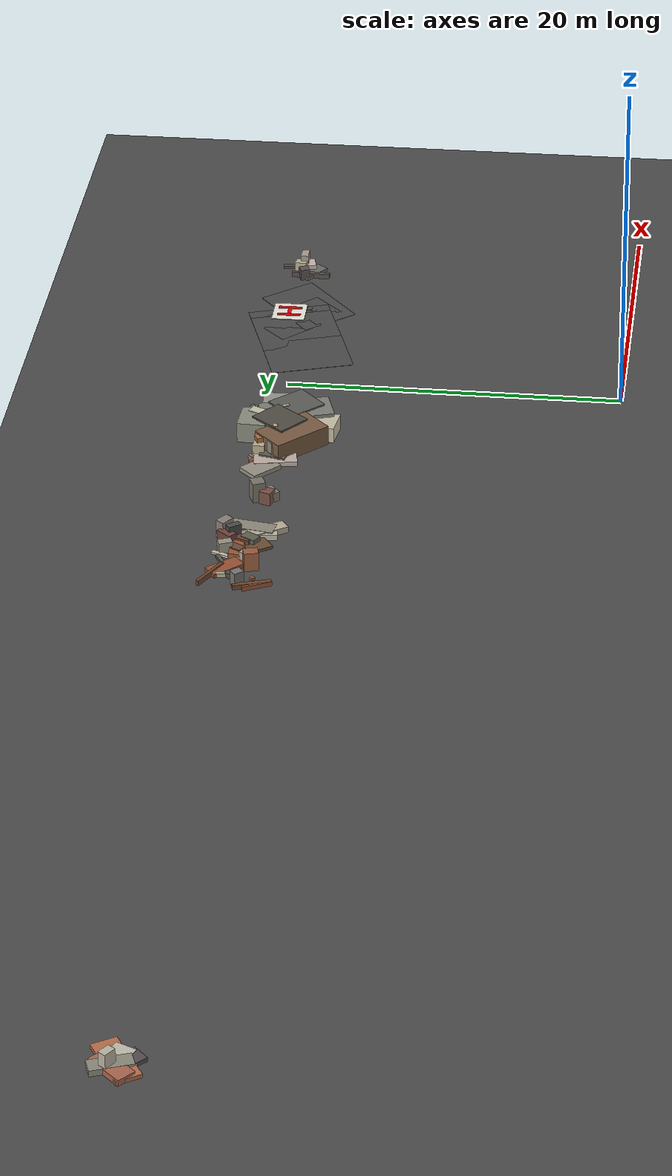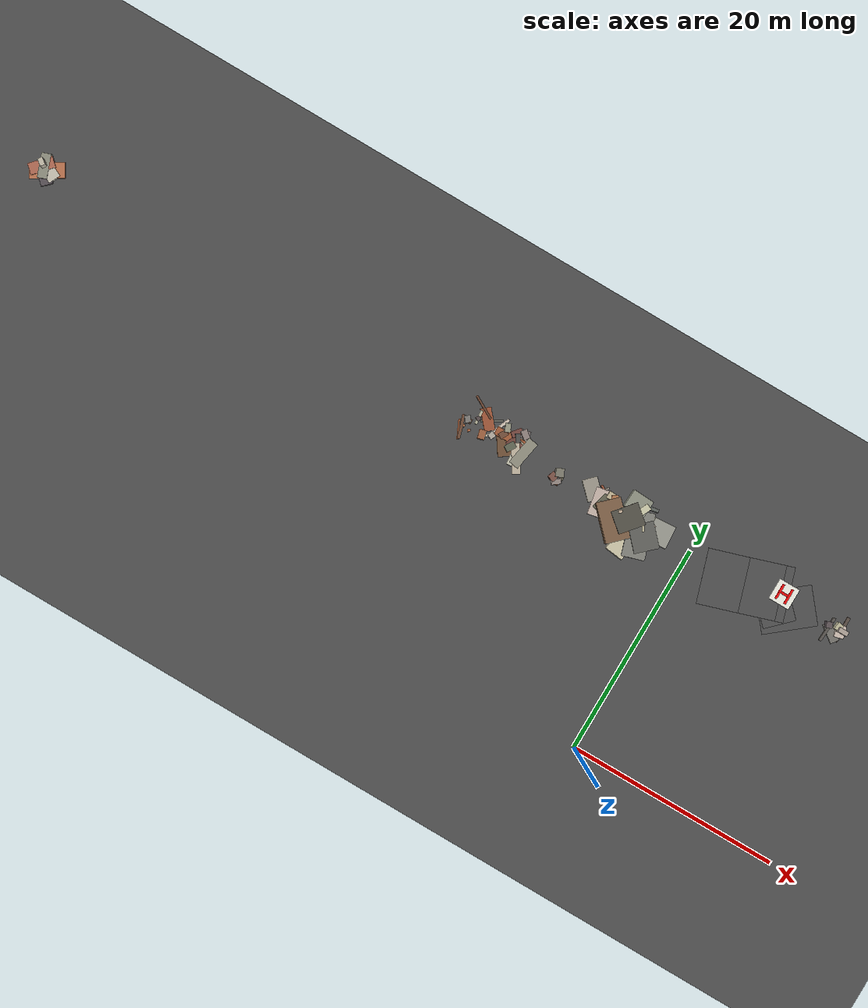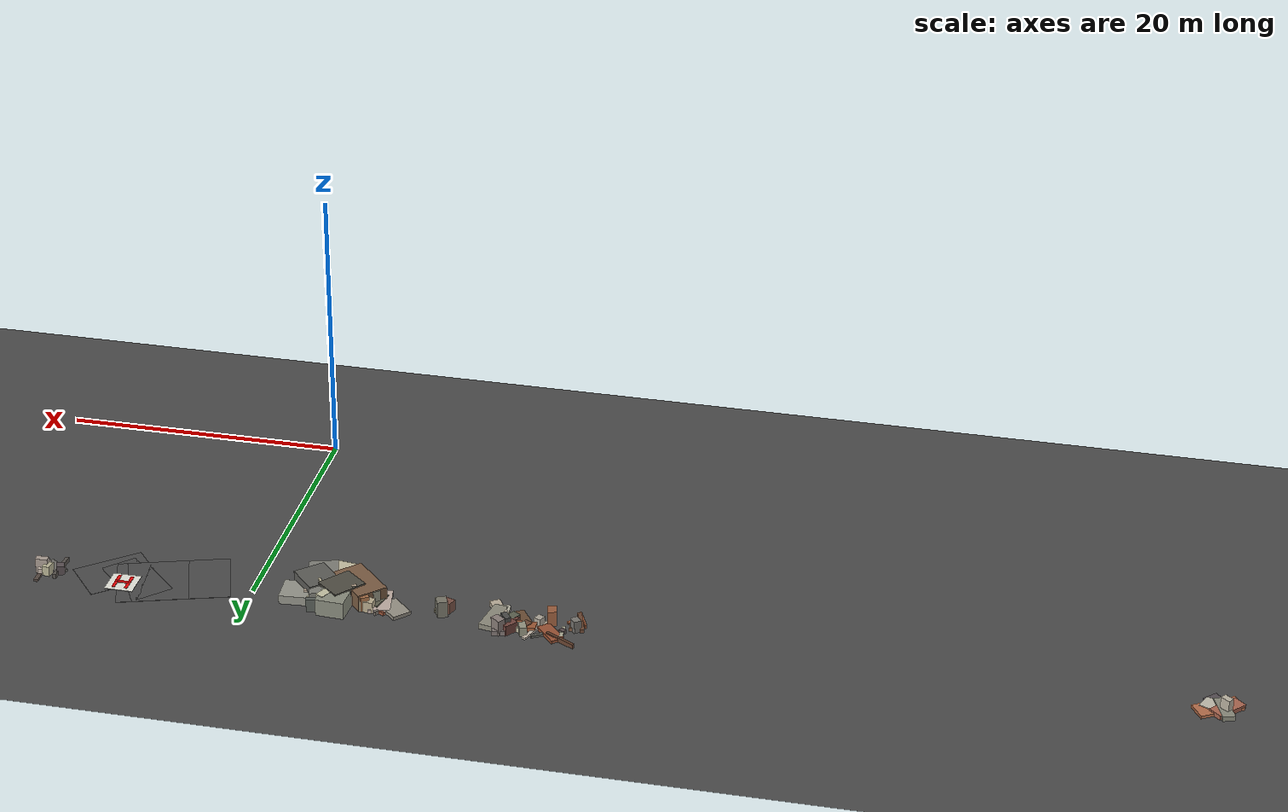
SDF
<sdf version="1.6">
 <world name="navitas_arena">
  <model name="ground_plane">
   <static>true</static>
   <link name="link">
    <collision name="collision">
     <geometry><plane><normal>0 0 1</normal><size>400 400</size></plane></geometry>
     <surface><friction><ode><mu>0.800</mu><mu2>0.800</mu2></ode></friction></surface>
    </collision>
    <visual name="visual">
     <cast_shadows>false</cast_shadows>
     <geometry><plane><normal>0 0 1</normal><size>400 400</size></plane></geometry>
     <material>
      <specular>0.04 0.04 0.04 1</specular>
      <script>
       <uri>file://media/materials/scripts/navitas_asphalt.material</uri>
       <name>Navitas/RealArenaAsphalt</name>
      </script>
     </material>
    </visual>
   </link>
  </model>
  <model name="deb_kolay_40">
   <static>true</static>
   <pose>-66.063 20.154 0.000 0 0 0</pose>
   <link name="link">
    <collision name="col_0">
     <pose>0.030 0.033 0.173 0.000 0.000 1.924</pose>
     <geometry><box><size>2.234 0.868 0.347</size></box></geometry>
    </collision>
    <visual name="vis_0">
     <pose>0.030 0.033 0.173 0.000 0.000 1.924</pose>
     <geometry><box><size>2.234 0.868 0.347</size></box></geometry>
     <material>
      <ambient>0.51 0.51 0.45 1</ambient>
      <diffuse>0.55 0.55 0.49 1</diffuse>
      <specular>0.05 0.05 0.045 1</specular>
     </material>
    </visual>
    <collision name="col_1">
     <pose>0.323 -0.517 0.119 0.000 0.000 2.340</pose>
     <geometry><box><size>2.125 1.078 0.238</size></box></geometry>
    </collision>
    <visual name="vis_1">
     <pose>0.323 -0.517 0.119 0.000 0.000 2.340</pose>
     <geometry><box><size>2.125 1.078 0.238</size></box></geometry>
     <material>
      <ambient>0.31 0.29 0.31 1</ambient>
      <diffuse>0.34 0.31 0.33 1</diffuse>
      <specular>0.05 0.05 0.045 1</specular>
     </material>
    </visual>
    <collision name="col_2">
     <pose>-0.110 0.154 0.572 0.000 0.000 0.941</pose>
     <geometry><box><size>0.465 0.703 1.143</size></box></geometry>
    </collision>
    <visual name="vis_2">
     <pose>-0.110 0.154 0.572 0.000 0.000 0.941</pose>
     <geometry><box><size>0.465 0.703 1.143</size></box></geometry>
     <material>
      <ambient>0.69 0.67 0.60 1</ambient>
      <diffuse>0.75 0.72 0.65 1</diffuse>
      <specular>0.05 0.05 0.045 1</specular>
     </material>
    </visual>
    <collision name="col_3">
     <pose>0.533 -0.122 0.138 0.000 0.000 2.708</pose>
     <geometry><box><size>1.956 1.161 0.276</size></box></geometry>
    </collision>
    <visual name="vis_3">
     <pose>0.533 -0.122 0.138 0.000 0.000 2.708</pose>
     <geometry><box><size>1.956 1.161 0.276</size></box></geometry>
     <material>
      <ambient>0.71 0.69 0.63 1</ambient>
      <diffuse>0.77 0.75 0.69 1</diffuse>
      <specular>0.05 0.05 0.045 1</specular>
     </material>
    </visual>
    <collision name="col_4">
     <pose>0.050 -0.445 0.084 0.000 0.000 1.717</pose>
     <geometry><box><size>1.580 0.169 0.168</size></box></geometry>
    </collision>
    <visual name="vis_4">
     <pose>0.050 -0.445 0.084 0.000 0.000 1.717</pose>
     <geometry><box><size>1.580 0.169 0.168</size></box></geometry>
     <material>
      <ambient>0.49 0.51 0.47 1</ambient>
      <diffuse>0.53 0.55 0.51 1</diffuse>
      <specular>0.05 0.05 0.045 1</specular>
     </material>
    </visual>
    <collision name="col_5">
     <pose>0.430 -0.178 0.109 0.000 0.000 0.545</pose>
     <geometry><box><size>3.169 1.400 0.218</size></box></geometry>
    </collision>
    <visual name="vis_5">
     <pose>0.430 -0.178 0.109 0.000 0.000 0.545</pose>
     <geometry><box><size>3.169 1.400 0.218</size></box></geometry>
     <material>
      <ambient>0.67 0.40 0.28 1</ambient>
      <diffuse>0.72 0.44 0.30 1</diffuse>
      <specular>0.05 0.05 0.045 1</specular>
     </material>
    </visual>
    <collision name="col_6">
     <pose>-0.175 -0.064 0.170 0.000 0.000 0.833</pose>
     <geometry><box><size>2.281 1.047 0.340</size></box></geometry>
    </collision>
    <visual name="vis_6">
     <pose>-0.175 -0.064 0.170 0.000 0.000 0.833</pose>
     <geometry><box><size>2.281 1.047 0.340</size></box></geometry>
     <material>
      <ambient>0.63 0.38 0.29 1</ambient>
      <diffuse>0.68 0.41 0.32 1</diffuse>
      <specular>0.05 0.05 0.045 1</specular>
     </material>
    </visual>
   </link>
  </model>
  <model name="road_orta_1_24">
   <static>true</static>
   <pose>3.800 19.305 0.040 0 0 0.308</pose>
   <link name="link">
    <collision name="col"><geometry><box><size>3.763 5.000 0.020</size></box></geometry></collision>
    <visual name="vis">
     <geometry><box><size>3.763 5.000 0.020</size></box></geometry>
     <material>
      <specular>0.04 0.04 0.04 1</specular>
      <script>
       <uri>file://media/materials/scripts/navitas_asphalt.material</uri>
       <name>Navitas/RealArenaAsphalt</name>
      </script>
     </material>
    </visual>
   </link>
  </model>
  <model name="road_orta_1_25">
   <static>true</static>
   <pose>6.735 20.255 0.040 0 0 0.317</pose>
   <link name="link">
    <collision name="col"><geometry><box><size>4.207 5.000 0.020</size></box></geometry></collision>
    <visual name="vis">
     <geometry><box><size>4.207 5.000 0.020</size></box></geometry>
     <material>
      <specular>0.04 0.04 0.04 1</specular>
      <script>
       <uri>file://media/materials/scripts/navitas_asphalt.material</uri>
       <name>Navitas/RealArenaAsphalt</name>
      </script>
     </material>
    </visual>
   </link>
  </model>
  <model name="road_orta_1_26">
   <static>true</static>
   <pose>8.666 20.885 0.040 0 0 0.309</pose>
   <link name="link">
    <collision name="col"><geometry><box><size>1.656 5.000 0.020</size></box></geometry></collision>
    <visual name="vis">
     <geometry><box><size>1.656 5.000 0.020</size></box></geometry>
     <material>
      <specular>0.04 0.04 0.04 1</specular>
      <script>
       <uri>file://media/materials/scripts/navitas_asphalt.material</uri>
       <name>Navitas/RealArenaAsphalt</name>
      </script>
     </material>
    </visual>
   </link>
  </model>
  <model name="road_orta_2_19">
   <static>true</static>
   <pose>8.283 20.266 0.040 0 0 0.780</pose>
   <link name="link">
    <collision name="col"><geometry><box><size>2.988 5.000 0.020</size></box></geometry></collision>
    <visual name="vis">
     <geometry><box><size>2.988 5.000 0.020</size></box></geometry>
     <material>
      <specular>0.04 0.04 0.04 1</specular>
      <script>
       <uri>file://media/materials/scripts/navitas_asphalt.material</uri>
       <name>Navitas/RealArenaAsphalt</name>
      </script>
     </material>
    </visual>
   </link>
  </model>
  <model name="road_orta_3_20">
   <static>true</static>
   <pose>9.900 19.935 0.040 0 0 2.259</pose>
   <link name="link">
    <collision name="col"><geometry><box><size>3.656 5.000 0.020</size></box></geometry></collision>
    <visual name="vis">
     <geometry><box><size>3.656 5.000 0.020</size></box></geometry>
     <material>
      <specular>0.04 0.04 0.04 1</specular>
      <script>
       <uri>file://media/materials/scripts/navitas_asphalt.material</uri>
       <name>Navitas/RealArenaAsphalt</name>
      </script>
     </material>
    </visual>
   </link>
  </model>
  <model name="blk_orta_1_2_0">
   <static>true</static>
   <pose>-5.845 19.454 0.000 0 0 0</pose>
   <link name="link">
    <collision name="col_0">
     <pose>-0.384 0.643 0.640 0.000 0.000 3.530</pose>
     <geometry><box><size>0.273 0.604 1.280</size></box></geometry>
    </collision>
    <visual name="vis_0">
     <pose>-0.384 0.643 0.640 0.000 0.000 3.530</pose>
     <geometry><box><size>0.273 0.604 1.280</size></box></geometry>
     <material>
      <ambient>0.64 0.63 0.55 1</ambient>
      <diffuse>0.69 0.68 0.59 1</diffuse>
      <specular>0.05 0.05 0.045 1</specular>
     </material>
    </visual>
    <collision name="col_1">
     <pose>1.053 -0.569 0.571 0.000 0.000 1.871</pose>
     <geometry><box><size>4.210 2.083 1.142</size></box></geometry>
    </collision>
    <visual name="vis_1">
     <pose>1.053 -0.569 0.571 0.000 0.000 1.871</pose>
     <geometry><box><size>4.210 2.083 1.142</size></box></geometry>
     <material>
      <ambient>0.46 0.47 0.44 1</ambient>
      <diffuse>0.50 0.50 0.47 1</diffuse>
      <specular>0.05 0.05 0.045 1</specular>
     </material>
    </visual>
    <collision name="col_2">
     <pose>-0.264 1.766 0.616 0.000 0.000 3.087</pose>
     <geometry><box><size>2.002 1.684 1.233</size></box></geometry>
    </collision>
    <visual name="vis_2">
     <pose>-0.264 1.766 0.616 0.000 0.000 3.087</pose>
     <geometry><box><size>2.002 1.684 1.233</size></box></geometry>
     <material>
      <ambient>0.51 0.52 0.47 1</ambient>
      <diffuse>0.55 0.56 0.50 1</diffuse>
      <specular>0.05 0.05 0.045 1</specular>
     </material>
    </visual>
    <collision name="col_3">
     <pose>0.304 0.008 0.384 0.000 0.000 3.150</pose>
     <geometry><box><size>3.542 1.722 0.769</size></box></geometry>
    </collision>
    <visual name="vis_3">
     <pose>0.304 0.008 0.384 0.000 0.000 3.150</pose>
     <geometry><box><size>3.542 1.722 0.769</size></box></geometry>
     <material>
      <ambient>0.72 0.66 0.58 1</ambient>
      <diffuse>0.78 0.71 0.63 1</diffuse>
      <specular>0.05 0.05 0.045 1</specular>
     </material>
    </visual>
    <collision name="col_4">
     <pose>-1.349 0.367 0.670 0.000 0.000 3.773</pose>
     <geometry><box><size>0.347 0.246 1.341</size></box></geometry>
    </collision>
    <visual name="vis_4">
     <pose>-1.349 0.367 0.670 0.000 0.000 3.773</pose>
     <geometry><box><size>0.347 0.246 1.341</size></box></geometry>
     <material>
      <ambient>0.68 0.61 0.53 1</ambient>
      <diffuse>0.74 0.66 0.57 1</diffuse>
      <specular>0.05 0.05 0.045 1</specular>
     </material>
    </visual>
    <collision name="col_5">
     <pose>1.561 -0.527 0.621 0.000 0.000 2.319</pose>
     <geometry><box><size>2.455 2.270 1.241</size></box></geometry>
    </collision>
    <visual name="vis_5">
     <pose>1.561 -0.527 0.621 0.000 0.000 2.319</pose>
     <geometry><box><size>2.455 2.270 1.241</size></box></geometry>
     <material>
      <ambient>0.35 0.34 0.32 1</ambient>
      <diffuse>0.37 0.37 0.35 1</diffuse>
      <specular>0.05 0.05 0.045 1</specular>
     </material>
    </visual>
    <collision name="col_6">
     <pose>-1.463 -0.610 0.609 0.000 0.000 2.344</pose>
     <geometry><box><size>3.681 2.238 1.219</size></box></geometry>
    </collision>
    <visual name="vis_6">
     <pose>-1.463 -0.610 0.609 0.000 0.000 2.344</pose>
     <geometry><box><size>3.681 2.238 1.219</size></box></geometry>
     <material>
      <ambient>0.45 0.34 0.25 1</ambient>
      <diffuse>0.49 0.37 0.27 1</diffuse>
      <specular>0.05 0.05 0.045 1</specular>
     </material>
    </visual>
    <collision name="col_7">
     <pose>0.374 1.169 0.335 0.000 0.000 2.935</pose>
     <geometry><box><size>2.508 1.084 0.671</size></box></geometry>
    </collision>
    <visual name="vis_7">
     <pose>0.374 1.169 0.335 0.000 0.000 2.935</pose>
     <geometry><box><size>2.508 1.084 0.671</size></box></geometry>
     <material>
      <ambient>0.70 0.69 0.59 1</ambient>
      <diffuse>0.76 0.75 0.64 1</diffuse>
      <specular>0.05 0.05 0.045 1</specular>
     </material>
    </visual>
   </link>
  </model>
  <model name="blk_orta_1_2_2">
   <static>true</static>
   <pose>-5.154 19.445 0.000 0 0 0</pose>
   <link name="link">
    <collision name="col_0">
     <pose>-1.149 1.597 0.609 0.000 0.000 1.332</pose>
     <geometry><box><size>0.975 0.878 1.217</size></box></geometry>
    </collision>
    <visual name="vis_0">
     <pose>-1.149 1.597 0.609 0.000 0.000 1.332</pose>
     <geometry><box><size>0.975 0.878 1.217</size></box></geometry>
     <material>
      <ambient>0.77 0.72 0.62 1</ambient>
      <diffuse>0.83 0.77 0.67 1</diffuse>
      <specular>0.05 0.05 0.045 1</specular>
     </material>
    </visual>
    <collision name="col_1">
     <pose>-0.631 0.432 0.466 0.000 0.000 1.535</pose>
     <geometry><box><size>2.316 1.122 0.932</size></box></geometry>
    </collision>
    <visual name="vis_1">
     <pose>-0.631 0.432 0.466 0.000 0.000 1.535</pose>
     <geometry><box><size>2.316 1.122 0.932</size></box></geometry>
     <material>
      <ambient>0.60 0.37 0.24 1</ambient>
      <diffuse>0.64 0.40 0.26 1</diffuse>
      <specular>0.05 0.05 0.045 1</specular>
     </material>
    </visual>
    <collision name="col_2">
     <pose>-1.329 -1.096 0.568 0.000 0.000 -0.329</pose>
     <geometry><box><size>1.659 0.223 1.137</size></box></geometry>
    </collision>
    <visual name="vis_2">
     <pose>-1.329 -1.096 0.568 0.000 0.000 -0.329</pose>
     <geometry><box><size>1.659 0.223 1.137</size></box></geometry>
     <material>
      <ambient>0.51 0.46 0.48 1</ambient>
      <diffuse>0.55 0.50 0.52 1</diffuse>
      <specular>0.05 0.05 0.045 1</specular>
     </material>
    </visual>
    <collision name="col_3">
     <pose>-0.459 -1.904 0.462 0.000 0.000 1.446</pose>
     <geometry><box><size>2.378 1.715 0.925</size></box></geometry>
    </collision>
    <visual name="vis_3">
     <pose>-0.459 -1.904 0.462 0.000 0.000 1.446</pose>
     <geometry><box><size>2.378 1.715 0.925</size></box></geometry>
     <material>
      <ambient>0.73 0.70 0.60 1</ambient>
      <diffuse>0.79 0.76 0.65 1</diffuse>
      <specular>0.05 0.05 0.045 1</specular>
     </material>
    </visual>
    <collision name="col_4">
     <pose>0.389 0.169 0.644 0.000 0.000 2.097</pose>
     <geometry><box><size>0.672 0.206 1.288</size></box></geometry>
    </collision>
    <visual name="vis_4">
     <pose>0.389 0.169 0.644 0.000 0.000 2.097</pose>
     <geometry><box><size>0.672 0.206 1.288</size></box></geometry>
     <material>
      <ambient>0.65 0.63 0.53 1</ambient>
      <diffuse>0.71 0.68 0.57 1</diffuse>
      <specular>0.05 0.05 0.045 1</specular>
     </material>
    </visual>
    <collision name="col_5">
     <pose>-0.329 1.486 0.635 0.000 0.000 1.130</pose>
     <geometry><box><size>1.225 0.613 1.270</size></box></geometry>
    </collision>
    <visual name="vis_5">
     <pose>-0.329 1.486 0.635 0.000 0.000 1.130</pose>
     <geometry><box><size>1.225 0.613 1.270</size></box></geometry>
     <material>
      <ambient>0.73 0.72 0.61 1</ambient>
      <diffuse>0.79 0.78 0.66 1</diffuse>
      <specular>0.05 0.05 0.045 1</specular>
     </material>
    </visual>
    <collision name="col_6">
     <pose>-1.139 0.216 0.665 0.000 0.000 0.878</pose>
     <geometry><box><size>2.489 2.080 1.330</size></box></geometry>
    </collision>
    <visual name="vis_6">
     <pose>-1.139 0.216 0.665 0.000 0.000 0.878</pose>
     <geometry><box><size>2.489 2.080 1.330</size></box></geometry>
     <material>
      <ambient>0.30 0.29 0.25 1</ambient>
      <diffuse>0.32 0.31 0.27 1</diffuse>
      <specular>0.05 0.05 0.045 1</specular>
     </material>
    </visual>
    <collision name="col_7">
     <pose>-0.498 1.853 0.485 0.000 0.000 0.198</pose>
     <geometry><box><size>2.777 0.296 0.971</size></box></geometry>
    </collision>
    <visual name="vis_7">
     <pose>-0.498 1.853 0.485 0.000 0.000 0.198</pose>
     <geometry><box><size>2.777 0.296 0.971</size></box></geometry>
     <material>
      <ambient>0.33 0.35 0.33 1</ambient>
      <diffuse>0.36 0.38 0.36 1</diffuse>
      <specular>0.05 0.05 0.045 1</specular>
     </material>
    </visual>
    <collision name="col_8">
     <pose>1.468 0.548 0.319 0.000 0.000 0.069</pose>
     <geometry><box><size>3.123 2.096 0.639</size></box></geometry>
    </collision>
    <visual name="vis_8">
     <pose>1.468 0.548 0.319 0.000 0.000 0.069</pose>
     <geometry><box><size>3.123 2.096 0.639</size></box></geometry>
     <material>
      <ambient>0.54 0.54 0.51 1</ambient>
      <diffuse>0.59 0.59 0.55 1</diffuse>
      <specular>0.05 0.05 0.045 1</specular>
     </material>
    </visual>
   </link>
  </model>
  <model name="deb_orta_14">
   <static>true</static>
   <pose>-17.869 19.857 0.000 0 0 0</pose>
   <link name="link">
    <collision name="col_0">
     <pose>0.520 -0.665 0.189 0.000 0.000 2.142</pose>
     <geometry><box><size>2.696 0.744 0.378</size></box></geometry>
    </collision>
    <visual name="vis_0">
     <pose>0.520 -0.665 0.189 0.000 0.000 2.142</pose>
     <geometry><box><size>2.696 0.744 0.378</size></box></geometry>
     <material>
      <ambient>0.68 0.64 0.56 1</ambient>
      <diffuse>0.74 0.69 0.61 1</diffuse>
      <specular>0.05 0.05 0.045 1</specular>
     </material>
    </visual>
    <collision name="col_1">
     <pose>-0.421 -0.020 0.234 0.000 0.000 1.031</pose>
     <geometry><box><size>0.962 0.630 0.468</size></box></geometry>
    </collision>
    <visual name="vis_1">
     <pose>-0.421 -0.020 0.234 0.000 0.000 1.031</pose>
     <geometry><box><size>0.962 0.630 0.468</size></box></geometry>
     <material>
      <ambient>0.35 0.36 0.30 1</ambient>
      <diffuse>0.37 0.39 0.32 1</diffuse>
      <specular>0.05 0.05 0.045 1</specular>
     </material>
    </visual>
    <collision name="col_2">
     <pose>-0.506 0.414 0.223 0.000 0.000 1.192</pose>
     <geometry><box><size>1.060 0.580 0.447</size></box></geometry>
    </collision>
    <visual name="vis_2">
     <pose>-0.506 0.414 0.223 0.000 0.000 1.192</pose>
     <geometry><box><size>1.060 0.580 0.447</size></box></geometry>
     <material>
      <ambient>0.40 0.24 0.20 1</ambient>
      <diffuse>0.43 0.26 0.22 1</diffuse>
      <specular>0.05 0.05 0.045 1</specular>
     </material>
    </visual>
    <collision name="col_3">
     <pose>0.865 0.079 0.196 0.000 0.000 1.394</pose>
     <geometry><box><size>2.736 0.959 0.392</size></box></geometry>
    </collision>
    <visual name="vis_3">
     <pose>0.865 0.079 0.196 0.000 0.000 1.394</pose>
     <geometry><box><size>2.736 0.959 0.392</size></box></geometry>
     <material>
      <ambient>0.52 0.51 0.45 1</ambient>
      <diffuse>0.56 0.55 0.49 1</diffuse>
      <specular>0.05 0.05 0.045 1</specular>
     </material>
    </visual>
    <collision name="col_4">
     <pose>-0.401 0.151 0.070 0.000 0.000 0.747</pose>
     <geometry><box><size>0.341 0.279 0.140</size></box></geometry>
    </collision>
    <visual name="vis_4">
     <pose>-0.401 0.151 0.070 0.000 0.000 0.747</pose>
     <geometry><box><size>0.341 0.279 0.140</size></box></geometry>
     <material>
      <ambient>0.59 0.57 0.52 1</ambient>
      <diffuse>0.64 0.61 0.56 1</diffuse>
      <specular>0.05 0.05 0.045 1</specular>
     </material>
    </visual>
    <collision name="col_5">
     <pose>0.496 -0.038 0.156 0.000 0.000 1.677</pose>
     <geometry><box><size>2.777 1.229 0.312</size></box></geometry>
    </collision>
    <visual name="vis_5">
     <pose>0.496 -0.038 0.156 0.000 0.000 1.677</pose>
     <geometry><box><size>2.777 1.229 0.312</size></box></geometry>
     <material>
      <ambient>0.69 0.68 0.62 1</ambient>
      <diffuse>0.75 0.74 0.67 1</diffuse>
      <specular>0.05 0.05 0.045 1</specular>
     </material>
    </visual>
    <collision name="col_6">
     <pose>-0.234 0.832 0.101 0.000 0.000 0.903</pose>
     <geometry><box><size>1.056 0.137 0.201</size></box></geometry>
    </collision>
    <visual name="vis_6">
     <pose>-0.234 0.832 0.101 0.000 0.000 0.903</pose>
     <geometry><box><size>1.056 0.137 0.201</size></box></geometry>
     <material>
      <ambient>0.52 0.52 0.43 1</ambient>
      <diffuse>0.56 0.56 0.47 1</diffuse>
      <specular>0.05 0.05 0.045 1</specular>
     </material>
    </visual>
   </link>
  </model>
  <model name="deb_orta_43">
   <static>true</static>
   <pose>-8.365 20.146 0.000 0 0 0</pose>
   <link name="link">
    <collision name="col_0">
     <pose>0.673 0.169 0.171 0.000 0.000 2.969</pose>
     <geometry><box><size>0.315 0.360 0.341</size></box></geometry>
    </collision>
    <visual name="vis_0">
     <pose>0.673 0.169 0.171 0.000 0.000 2.969</pose>
     <geometry><box><size>0.315 0.360 0.341</size></box></geometry>
     <material>
      <ambient>0.57 0.31 0.22 1</ambient>
      <diffuse>0.62 0.33 0.23 1</diffuse>
      <specular>0.05 0.05 0.045 1</specular>
     </material>
    </visual>
    <collision name="col_1">
     <pose>-0.196 -0.278 0.581 0.000 0.000 3.746</pose>
     <geometry><box><size>0.862 0.500 1.162</size></box></geometry>
    </collision>
    <visual name="vis_1">
     <pose>-0.196 -0.278 0.581 0.000 0.000 3.746</pose>
     <geometry><box><size>0.862 0.500 1.162</size></box></geometry>
     <material>
      <ambient>0.53 0.53 0.46 1</ambient>
      <diffuse>0.57 0.57 0.50 1</diffuse>
      <specular>0.05 0.05 0.045 1</specular>
     </material>
    </visual>
    <collision name="col_2">
     <pose>0.124 -0.586 0.193 0.000 0.000 2.904</pose>
     <geometry><box><size>2.034 1.592 0.385</size></box></geometry>
    </collision>
    <visual name="vis_2">
     <pose>0.124 -0.586 0.193 0.000 0.000 2.904</pose>
     <geometry><box><size>2.034 1.592 0.385</size></box></geometry>
     <material>
      <ambient>0.35 0.35 0.29 1</ambient>
      <diffuse>0.38 0.38 0.31 1</diffuse>
      <specular>0.05 0.05 0.045 1</specular>
     </material>
    </visual>
    <collision name="col_3">
     <pose>0.225 0.461 0.558 0.000 0.000 2.011</pose>
     <geometry><box><size>0.527 0.592 1.116</size></box></geometry>
    </collision>
    <visual name="vis_3">
     <pose>0.225 0.461 0.558 0.000 0.000 2.011</pose>
     <geometry><box><size>0.527 0.592 1.116</size></box></geometry>
     <material>
      <ambient>0.62 0.42 0.27 1</ambient>
      <diffuse>0.67 0.45 0.29 1</diffuse>
      <specular>0.05 0.05 0.045 1</specular>
     </material>
    </visual>
   </link>
  </model>
  <model name="deb_orta_73">
   <static>true</static>
   <pose>-12.766 19.170 0.000 0 0 0</pose>
   <link name="link">
    <collision name="col_0">
     <pose>-0.660 0.888 0.605 0.000 0.000 2.004</pose>
     <geometry><box><size>0.771 0.739 1.211</size></box></geometry>
    </collision>
    <visual name="vis_0">
     <pose>-0.660 0.888 0.605 0.000 0.000 2.004</pose>
     <geometry><box><size>0.771 0.739 1.211</size></box></geometry>
     <material>
      <ambient>0.45 0.43 0.39 1</ambient>
      <diffuse>0.48 0.47 0.42 1</diffuse>
      <specular>0.05 0.05 0.045 1</specular>
     </material>
    </visual>
    <collision name="col_1">
     <pose>-0.967 0.312 0.396 0.000 0.000 -0.343</pose>
     <geometry><box><size>0.675 0.690 0.792</size></box></geometry>
    </collision>
    <visual name="vis_1">
     <pose>-0.967 0.312 0.396 0.000 0.000 -0.343</pose>
     <geometry><box><size>0.675 0.690 0.792</size></box></geometry>
     <material>
      <ambient>0.44 0.29 0.25 1</ambient>
      <diffuse>0.48 0.32 0.27 1</diffuse>
      <specular>0.05 0.05 0.045 1</specular>
     </material>
    </visual>
    <collision name="col_2">
     <pose>-0.535 0.038 0.220 0.000 0.000 0.055</pose>
     <geometry><box><size>0.571 0.433 0.440</size></box></geometry>
    </collision>
    <visual name="vis_2">
     <pose>-0.535 0.038 0.220 0.000 0.000 0.055</pose>
     <geometry><box><size>0.571 0.433 0.440</size></box></geometry>
     <material>
      <ambient>0.40 0.26 0.17 1</ambient>
      <diffuse>0.43 0.28 0.19 1</diffuse>
      <specular>0.05 0.05 0.045 1</specular>
     </material>
    </visual>
    <collision name="col_3">
     <pose>-0.219 0.586 0.108 0.000 0.000 1.540</pose>
     <geometry><box><size>0.353 0.288 0.216</size></box></geometry>
    </collision>
    <visual name="vis_3">
     <pose>-0.219 0.586 0.108 0.000 0.000 1.540</pose>
     <geometry><box><size>0.353 0.288 0.216</size></box></geometry>
     <material>
      <ambient>0.34 0.32 0.26 1</ambient>
      <diffuse>0.37 0.35 0.28 1</diffuse>
      <specular>0.05 0.05 0.045 1</specular>
     </material>
    </visual>
    <collision name="col_4">
     <pose>-0.517 0.077 0.293 0.000 0.000 0.659</pose>
     <geometry><box><size>0.881 0.467 0.587</size></box></geometry>
    </collision>
    <visual name="vis_4">
     <pose>-0.517 0.077 0.293 0.000 0.000 0.659</pose>
     <geometry><box><size>0.881 0.467 0.587</size></box></geometry>
     <material>
      <ambient>0.53 0.49 0.46 1</ambient>
      <diffuse>0.57 0.52 0.50 1</diffuse>
      <specular>0.05 0.05 0.045 1</specular>
     </material>
    </visual>
   </link>
  </model>
  <model name="deb_orta_116">
   <static>true</static>
   <pose>-20.516 20.245 0.000 0 0 0</pose>
   <link name="link">
    <collision name="col_0">
     <pose>-0.461 -0.785 0.570 0.000 0.000 1.820</pose>
     <geometry><box><size>0.830 0.619 1.141</size></box></geometry>
    </collision>
    <visual name="vis_0">
     <pose>-0.461 -0.785 0.570 0.000 0.000 1.820</pose>
     <geometry><box><size>0.830 0.619 1.141</size></box></geometry>
     <material>
      <ambient>0.56 0.34 0.23 1</ambient>
      <diffuse>0.61 0.37 0.24 1</diffuse>
      <specular>0.05 0.05 0.045 1</specular>
     </material>
    </visual>
    <collision name="col_1">
     <pose>-0.694 0.661 0.112 0.000 0.000 2.292</pose>
     <geometry><box><size>2.053 0.959 0.225</size></box></geometry>
    </collision>
    <visual name="vis_1">
     <pose>-0.694 0.661 0.112 0.000 0.000 2.292</pose>
     <geometry><box><size>2.053 0.959 0.225</size></box></geometry>
     <material>
      <ambient>0.57 0.31 0.20 1</ambient>
      <diffuse>0.61 0.33 0.21 1</diffuse>
      <specular>0.05 0.05 0.045 1</specular>
     </material>
    </visual>
    <collision name="col_2">
     <pose>0.624 0.772 0.068 0.000 0.000 1.187</pose>
     <geometry><box><size>1.767 0.260 0.137</size></box></geometry>
    </collision>
    <visual name="vis_2">
     <pose>0.624 0.772 0.068 0.000 0.000 1.187</pose>
     <geometry><box><size>1.767 0.260 0.137</size></box></geometry>
     <material>
      <ambient>0.74 0.69 0.64 1</ambient>
      <diffuse>0.80 0.75 0.69 1</diffuse>
      <specular>0.05 0.05 0.045 1</specular>
     </material>
    </visual>
    <collision name="col_3">
     <pose>-0.317 0.747 0.084 0.000 0.000 0.534</pose>
     <geometry><box><size>1.994 0.219 0.168</size></box></geometry>
    </collision>
    <visual name="vis_3">
     <pose>-0.317 0.747 0.084 0.000 0.000 0.534</pose>
     <geometry><box><size>1.994 0.219 0.168</size></box></geometry>
     <material>
      <ambient>0.34 0.34 0.32 1</ambient>
      <diffuse>0.37 0.37 0.34 1</diffuse>
      <specular>0.05 0.05 0.045 1</specular>
     </material>
    </visual>
    <collision name="col_4">
     <pose>0.262 -0.167 0.061 0.000 0.000 0.905</pose>
     <geometry><box><size>1.689 0.223 0.122</size></box></geometry>
    </collision>
    <visual name="vis_4">
     <pose>0.262 -0.167 0.061 0.000 0.000 0.905</pose>
     <geometry><box><size>1.689 0.223 0.122</size></box></geometry>
     <material>
      <ambient>0.69 0.64 0.56 1</ambient>
      <diffuse>0.74 0.69 0.61 1</diffuse>
      <specular>0.05 0.05 0.045 1</specular>
     </material>
    </visual>
    <collision name="col_5">
     <pose>0.320 -0.397 0.308 0.000 0.000 1.167</pose>
     <geometry><box><size>0.543 0.515 0.616</size></box></geometry>
    </collision>
    <visual name="vis_5">
     <pose>0.320 -0.397 0.308 0.000 0.000 1.167</pose>
     <geometry><box><size>0.543 0.515 0.616</size></box></geometry>
     <material>
      <ambient>0.64 0.61 0.56 1</ambient>
      <diffuse>0.69 0.66 0.61 1</diffuse>
      <specular>0.05 0.05 0.045 1</specular>
     </material>
    </visual>
   </link>
  </model>
  <model name="deb_orta_175">
   <static>true</static>
   <pose>14.299 20.668 0.000 0 0 0</pose>
   <link name="link">
    <collision name="col_0">
     <pose>0.647 0.062 0.542 0.000 0.000 3.136</pose>
     <geometry><box><size>0.874 0.448 1.084</size></box></geometry>
    </collision>
    <visual name="vis_0">
     <pose>0.647 0.062 0.542 0.000 0.000 3.136</pose>
     <geometry><box><size>0.874 0.448 1.084</size></box></geometry>
     <material>
      <ambient>0.62 0.57 0.54 1</ambient>
      <diffuse>0.67 0.62 0.58 1</diffuse>
      <specular>0.05 0.05 0.045 1</specular>
     </material>
    </visual>
    <collision name="col_1">
     <pose>0.548 -0.027 0.232 0.000 0.000 1.823</pose>
     <geometry><box><size>1.117 0.862 0.464</size></box></geometry>
    </collision>
    <visual name="vis_1">
     <pose>0.548 -0.027 0.232 0.000 0.000 1.823</pose>
     <geometry><box><size>1.117 0.862 0.464</size></box></geometry>
     <material>
      <ambient>0.73 0.67 0.63 1</ambient>
      <diffuse>0.79 0.73 0.68 1</diffuse>
      <specular>0.05 0.05 0.045 1</specular>
     </material>
    </visual>
    <collision name="col_2">
     <pose>-0.486 -0.408 0.160 0.000 0.000 1.523</pose>
     <geometry><box><size>2.367 0.241 0.320</size></box></geometry>
    </collision>
    <visual name="vis_2">
     <pose>-0.486 -0.408 0.160 0.000 0.000 1.523</pose>
     <geometry><box><size>2.367 0.241 0.320</size></box></geometry>
     <material>
      <ambient>0.31 0.30 0.28 1</ambient>
      <diffuse>0.34 0.32 0.30 1</diffuse>
      <specular>0.05 0.05 0.045 1</specular>
     </material>
    </visual>
    <collision name="col_3">
     <pose>0.191 0.246 0.365 0.000 0.000 1.414</pose>
     <geometry><box><size>0.700 0.526 0.730</size></box></geometry>
    </collision>
    <visual name="vis_3">
     <pose>0.191 0.246 0.365 0.000 0.000 1.414</pose>
     <geometry><box><size>0.700 0.526 0.730</size></box></geometry>
     <material>
      <ambient>0.68 0.66 0.54 1</ambient>
      <diffuse>0.73 0.71 0.59 1</diffuse>
      <specular>0.05 0.05 0.045 1</specular>
     </material>
    </visual>
    <collision name="col_4">
     <pose>-0.629 -0.014 0.342 0.000 0.000 0.398</pose>
     <geometry><box><size>0.548 0.563 0.685</size></box></geometry>
    </collision>
    <visual name="vis_4">
     <pose>-0.629 -0.014 0.342 0.000 0.000 0.398</pose>
     <geometry><box><size>0.548 0.563 0.685</size></box></geometry>
     <material>
      <ambient>0.33 0.30 0.31 1</ambient>
      <diffuse>0.36 0.32 0.33 1</diffuse>
      <specular>0.05 0.05 0.045 1</specular>
     </material>
    </visual>
    <collision name="col_5">
     <pose>0.688 0.246 0.078 0.000 0.000 1.582</pose>
     <geometry><box><size>2.393 0.294 0.155</size></box></geometry>
    </collision>
    <visual name="vis_5">
     <pose>0.688 0.246 0.078 0.000 0.000 1.582</pose>
     <geometry><box><size>2.393 0.294 0.155</size></box></geometry>
     <material>
      <ambient>0.32 0.27 0.24 1</ambient>
      <diffuse>0.34 0.29 0.26 1</diffuse>
      <specular>0.05 0.05 0.045 1</specular>
     </material>
    </visual>
    <collision name="col_6">
     <pose>-0.045 -0.490 0.095 0.000 0.000 2.498</pose>
     <geometry><box><size>1.779 0.824 0.190</size></box></geometry>
    </collision>
    <visual name="vis_6">
     <pose>-0.045 -0.490 0.095 0.000 0.000 2.498</pose>
     <geometry><box><size>1.779 0.824 0.190</size></box></geometry>
     <material>
      <ambient>0.41 0.40 0.38 1</ambient>
      <diffuse>0.44 0.43 0.41 1</diffuse>
      <specular>0.05 0.05 0.045 1</specular>
     </material>
    </visual>
   </link>
  </model>
  <model name="deb_orta_187">
   <static>true</static>
   <pose>-9.090 20.096 0.000 0 0 0</pose>
   <link name="link">
    <collision name="col_0">
     <pose>-1.087 0.230 0.134 0.000 0.000 2.371</pose>
     <geometry><box><size>2.002 1.376 0.269</size></box></geometry>
    </collision>
    <visual name="vis_0">
     <pose>-1.087 0.230 0.134 0.000 0.000 2.371</pose>
     <geometry><box><size>2.002 1.376 0.269</size></box></geometry>
     <material>
      <ambient>0.55 0.54 0.49 1</ambient>
      <diffuse>0.60 0.58 0.53 1</diffuse>
      <specular>0.05 0.05 0.045 1</specular>
     </material>
    </visual>
    <collision name="col_1">
     <pose>0.022 0.909 0.150 0.000 0.000 4.044</pose>
     <geometry><box><size>0.342 0.192 0.299</size></box></geometry>
    </collision>
    <visual name="vis_1">
     <pose>0.022 0.909 0.150 0.000 0.000 4.044</pose>
     <geometry><box><size>0.342 0.192 0.299</size></box></geometry>
     <material>
      <ambient>0.49 0.46 0.43 1</ambient>
      <diffuse>0.53 0.50 0.46 1</diffuse>
      <specular>0.05 0.05 0.045 1</specular>
     </material>
    </visual>
    <collision name="col_2">
     <pose>0.451 0.375 0.113 0.000 0.000 2.631</pose>
     <geometry><box><size>2.311 0.174 0.227</size></box></geometry>
    </collision>
    <visual name="vis_2">
     <pose>0.451 0.375 0.113 0.000 0.000 2.631</pose>
     <geometry><box><size>2.311 0.174 0.227</size></box></geometry>
     <material>
      <ambient>0.58 0.31 0.21 1</ambient>
      <diffuse>0.62 0.34 0.23 1</diffuse>
      <specular>0.05 0.05 0.045 1</specular>
     </material>
    </visual>
    <collision name="col_3">
     <pose>-0.223 0.582 0.080 0.000 0.000 3.398</pose>
     <geometry><box><size>0.472 0.250 0.160</size></box></geometry>
    </collision>
    <visual name="vis_3">
     <pose>-0.223 0.582 0.080 0.000 0.000 3.398</pose>
     <geometry><box><size>0.472 0.250 0.160</size></box></geometry>
     <material>
      <ambient>0.54 0.49 0.44 1</ambient>
      <diffuse>0.58 0.53 0.47 1</diffuse>
      <specular>0.05 0.05 0.045 1</specular>
     </material>
    </visual>
    <collision name="col_4">
     <pose>0.098 -0.473 0.143 0.000 0.000 1.756</pose>
     <geometry><box><size>2.520 1.506 0.287</size></box></geometry>
    </collision>
    <visual name="vis_4">
     <pose>0.098 -0.473 0.143 0.000 0.000 1.756</pose>
     <geometry><box><size>2.520 1.506 0.287</size></box></geometry>
     <material>
      <ambient>0.70 0.64 0.60 1</ambient>
      <diffuse>0.76 0.69 0.65 1</diffuse>
      <specular>0.05 0.05 0.045 1</specular>
     </material>
    </visual>
    <collision name="col_5">
     <pose>0.747 0.508 0.409 0.000 0.000 3.090</pose>
     <geometry><box><size>0.946 0.672 0.818</size></box></geometry>
    </collision>
    <visual name="vis_5">
     <pose>0.747 0.508 0.409 0.000 0.000 3.090</pose>
     <geometry><box><size>0.946 0.672 0.818</size></box></geometry>
     <material>
      <ambient>0.69 0.64 0.53 1</ambient>
      <diffuse>0.74 0.69 0.57 1</diffuse>
      <specular>0.05 0.05 0.045 1</specular>
     </material>
    </visual>
   </link>
  </model>
  <model name="deb_orta_231">
   <static>true</static>
   <pose>-17.917 21.002 0.000 0 0 0</pose>
   <link name="link">
    <collision name="col_0">
     <pose>-0.209 -0.215 0.188 0.000 0.000 2.866</pose>
     <geometry><box><size>2.035 0.154 0.377</size></box></geometry>
    </collision>
    <visual name="vis_0">
     <pose>-0.209 -0.215 0.188 0.000 0.000 2.866</pose>
     <geometry><box><size>2.035 0.154 0.377</size></box></geometry>
     <material>
      <ambient>0.71 0.68 0.59 1</ambient>
      <diffuse>0.76 0.74 0.63 1</diffuse>
      <specular>0.05 0.05 0.045 1</specular>
     </material>
    </visual>
    <collision name="col_1">
     <pose>-0.520 -0.081 0.166 0.000 0.000 2.522</pose>
     <geometry><box><size>0.291 0.380 0.332</size></box></geometry>
    </collision>
    <visual name="vis_1">
     <pose>-0.520 -0.081 0.166 0.000 0.000 2.522</pose>
     <geometry><box><size>0.291 0.380 0.332</size></box></geometry>
     <material>
      <ambient>0.70 0.69 0.59 1</ambient>
      <diffuse>0.76 0.74 0.64 1</diffuse>
      <specular>0.05 0.05 0.045 1</specular>
     </material>
    </visual>
    <collision name="col_2">
     <pose>-0.182 -0.205 0.529 0.000 0.000 2.177</pose>
     <geometry><box><size>0.805 0.424 1.058</size></box></geometry>
    </collision>
    <visual name="vis_2">
     <pose>-0.182 -0.205 0.529 0.000 0.000 2.177</pose>
     <geometry><box><size>0.805 0.424 1.058</size></box></geometry>
     <material>
      <ambient>0.28 0.28 0.27 1</ambient>
      <diffuse>0.30 0.30 0.29 1</diffuse>
      <specular>0.05 0.05 0.045 1</specular>
     </material>
    </visual>
    <collision name="col_3">
     <pose>0.172 0.396 0.186 0.000 0.000 1.739</pose>
     <geometry><box><size>0.781 0.910 0.371</size></box></geometry>
    </collision>
    <visual name="vis_3">
     <pose>0.172 0.396 0.186 0.000 0.000 1.739</pose>
     <geometry><box><size>0.781 0.910 0.371</size></box></geometry>
     <material>
      <ambient>0.46 0.43 0.42 1</ambient>
      <diffuse>0.50 0.46 0.45 1</diffuse>
      <specular>0.05 0.05 0.045 1</specular>
     </material>
    </visual>
    <collision name="col_4">
     <pose>0.174 -0.437 0.165 0.000 0.000 2.531</pose>
     <geometry><box><size>1.652 0.289 0.329</size></box></geometry>
    </collision>
    <visual name="vis_4">
     <pose>0.174 -0.437 0.165 0.000 0.000 2.531</pose>
     <geometry><box><size>1.652 0.289 0.329</size></box></geometry>
     <material>
      <ambient>0.46 0.29 0.26 1</ambient>
      <diffuse>0.50 0.32 0.28 1</diffuse>
      <specular>0.05 0.05 0.045 1</specular>
     </material>
    </visual>
    <collision name="col_5">
     <pose>0.218 0.365 0.570 0.000 0.000 2.468</pose>
     <geometry><box><size>0.835 0.584 1.140</size></box></geometry>
    </collision>
    <visual name="vis_5">
     <pose>0.218 0.365 0.570 0.000 0.000 2.468</pose>
     <geometry><box><size>0.835 0.584 1.140</size></box></geometry>
     <material>
      <ambient>0.51 0.47 0.45 1</ambient>
      <diffuse>0.55 0.50 0.48 1</diffuse>
      <specular>0.05 0.05 0.045 1</specular>
     </material>
    </visual>
    <collision name="col_6">
     <pose>-0.484 0.157 0.370 0.000 0.000 0.886</pose>
     <geometry><box><size>1.027 0.558 0.739</size></box></geometry>
    </collision>
    <visual name="vis_6">
     <pose>-0.484 0.157 0.370 0.000 0.000 0.886</pose>
     <geometry><box><size>1.027 0.558 0.739</size></box></geometry>
     <material>
      <ambient>0.41 0.25 0.22 1</ambient>
      <diffuse>0.45 0.27 0.24 1</diffuse>
      <specular>0.05 0.05 0.045 1</specular>
     </material>
    </visual>
   </link>
  </model>
  <model name="deb_orta_234">
   <static>true</static>
   <pose>-22.507 20.659 0.000 0 0 0</pose>
   <link name="link">
    <collision name="col_0">
     <pose>0.468 0.968 0.160 0.000 0.000 2.643</pose>
     <geometry><box><size>2.371 0.191 0.321</size></box></geometry>
    </collision>
    <visual name="vis_0">
     <pose>0.468 0.968 0.160 0.000 0.000 2.643</pose>
     <geometry><box><size>2.371 0.191 0.321</size></box></geometry>
     <material>
      <ambient>0.39 0.25 0.18 1</ambient>
      <diffuse>0.42 0.27 0.19 1</diffuse>
      <specular>0.05 0.05 0.045 1</specular>
     </material>
    </visual>
    <collision name="col_1">
     <pose>0.547 -0.110 0.149 0.000 0.000 2.671</pose>
     <geometry><box><size>0.393 0.356 0.298</size></box></geometry>
    </collision>
    <visual name="vis_1">
     <pose>0.547 -0.110 0.149 0.000 0.000 2.671</pose>
     <geometry><box><size>0.393 0.356 0.298</size></box></geometry>
     <material>
      <ambient>0.31 0.27 0.27 1</ambient>
      <diffuse>0.34 0.29 0.29 1</diffuse>
      <specular>0.05 0.05 0.045 1</specular>
     </material>
    </visual>
    <collision name="col_2">
     <pose>0.543 0.003 0.115 0.000 0.000 1.631</pose>
     <geometry><box><size>1.292 0.247 0.230</size></box></geometry>
    </collision>
    <visual name="vis_2">
     <pose>0.543 0.003 0.115 0.000 0.000 1.631</pose>
     <geometry><box><size>1.292 0.247 0.230</size></box></geometry>
     <material>
      <ambient>0.64 0.63 0.55 1</ambient>
      <diffuse>0.69 0.68 0.59 1</diffuse>
      <specular>0.05 0.05 0.045 1</specular>
     </material>
    </visual>
    <collision name="col_3">
     <pose>-0.231 -0.658 0.442 0.000 0.000 2.272</pose>
     <geometry><box><size>0.615 0.517 0.884</size></box></geometry>
    </collision>
    <visual name="vis_3">
     <pose>-0.231 -0.658 0.442 0.000 0.000 2.272</pose>
     <geometry><box><size>0.615 0.517 0.884</size></box></geometry>
     <material>
      <ambient>0.44 0.44 0.42 1</ambient>
      <diffuse>0.48 0.47 0.45 1</diffuse>
      <specular>0.05 0.05 0.045 1</specular>
     </material>
    </visual>
   </link>
  </model>
  <model name="deb_orta_238">
   <static>true</static>
   <pose>-18.876 20.598 0.000 0 0 0</pose>
   <link name="link">
    <collision name="col_0">
     <pose>-0.492 -0.125 0.198 0.000 0.000 1.071</pose>
     <geometry><box><size>0.786 0.551 0.396</size></box></geometry>
    </collision>
    <visual name="vis_0">
     <pose>-0.492 -0.125 0.198 0.000 0.000 1.071</pose>
     <geometry><box><size>0.786 0.551 0.396</size></box></geometry>
     <material>
      <ambient>0.41 0.28 0.20 1</ambient>
      <diffuse>0.44 0.30 0.22 1</diffuse>
      <specular>0.05 0.05 0.045 1</specular>
     </material>
    </visual>
    <collision name="col_1">
     <pose>0.079 -0.853 0.093 0.000 0.000 2.165</pose>
     <geometry><box><size>2.048 1.360 0.186</size></box></geometry>
    </collision>
    <visual name="vis_1">
     <pose>0.079 -0.853 0.093 0.000 0.000 2.165</pose>
     <geometry><box><size>2.048 1.360 0.186</size></box></geometry>
     <material>
      <ambient>0.40 0.29 0.19 1</ambient>
      <diffuse>0.43 0.31 0.21 1</diffuse>
      <specular>0.05 0.05 0.045 1</specular>
     </material>
    </visual>
    <collision name="col_2">
     <pose>0.223 -0.096 0.164 0.000 0.000 3.164</pose>
     <geometry><box><size>2.906 0.782 0.328</size></box></geometry>
    </collision>
    <visual name="vis_2">
     <pose>0.223 -0.096 0.164 0.000 0.000 3.164</pose>
     <geometry><box><size>2.906 0.782 0.328</size></box></geometry>
     <material>
      <ambient>0.57 0.32 0.20 1</ambient>
      <diffuse>0.62 0.35 0.21 1</diffuse>
      <specular>0.05 0.05 0.045 1</specular>
     </material>
    </visual>
    <collision name="col_3">
     <pose>-0.441 0.547 0.343 0.000 0.000 3.521</pose>
     <geometry><box><size>0.498 0.797 0.687</size></box></geometry>
    </collision>
    <visual name="vis_3">
     <pose>-0.441 0.547 0.343 0.000 0.000 3.521</pose>
     <geometry><box><size>0.498 0.797 0.687</size></box></geometry>
     <material>
      <ambient>0.55 0.55 0.47 1</ambient>
      <diffuse>0.59 0.59 0.51 1</diffuse>
      <specular>0.05 0.05 0.045 1</specular>
     </material>
    </visual>
   </link>
  </model>
  <model name="deb_orta_260">
   <static>true</static>
   <pose>-22.757 19.435 0.000 0 0 0</pose>
   <link name="link">
    <collision name="col_0">
     <pose>-0.113 -0.033 0.072 0.000 0.000 1.469</pose>
     <geometry><box><size>0.231 0.439 0.144</size></box></geometry>
    </collision>
    <visual name="vis_0">
     <pose>-0.113 -0.033 0.072 0.000 0.000 1.469</pose>
     <geometry><box><size>0.231 0.439 0.144</size></box></geometry>
     <material>
      <ambient>0.61 0.39 0.25 1</ambient>
      <diffuse>0.66 0.42 0.27 1</diffuse>
      <specular>0.05 0.05 0.045 1</specular>
     </material>
    </visual>
    <collision name="col_1">
     <pose>-0.247 -0.577 0.135 0.000 0.000 2.005</pose>
     <geometry><box><size>1.755 0.140 0.269</size></box></geometry>
    </collision>
    <visual name="vis_1">
     <pose>-0.247 -0.577 0.135 0.000 0.000 2.005</pose>
     <geometry><box><size>1.755 0.140 0.269</size></box></geometry>
     <material>
      <ambient>0.55 0.31 0.18 1</ambient>
      <diffuse>0.59 0.33 0.20 1</diffuse>
      <specular>0.05 0.05 0.045 1</specular>
     </material>
    </visual>
    <collision name="col_2">
     <pose>0.299 0.545 0.132 0.000 0.000 0.054</pose>
     <geometry><box><size>0.279 0.408 0.265</size></box></geometry>
    </collision>
    <visual name="vis_2">
     <pose>0.299 0.545 0.132 0.000 0.000 0.054</pose>
     <geometry><box><size>0.279 0.408 0.265</size></box></geometry>
     <material>
      <ambient>0.45 0.33 0.23 1</ambient>
      <diffuse>0.49 0.35 0.25 1</diffuse>
      <specular>0.05 0.05 0.045 1</specular>
     </material>
    </visual>
    <collision name="col_3">
     <pose>0.607 -0.195 0.076 0.000 0.000 0.771</pose>
     <geometry><box><size>0.270 0.215 0.153</size></box></geometry>
    </collision>
    <visual name="vis_3">
     <pose>0.607 -0.195 0.076 0.000 0.000 0.771</pose>
     <geometry><box><size>0.270 0.215 0.153</size></box></geometry>
     <material>
      <ambient>0.60 0.35 0.22 1</ambient>
      <diffuse>0.65 0.38 0.24 1</diffuse>
      <specular>0.05 0.05 0.045 1</specular>
     </material>
    </visual>
    <collision name="col_4">
     <pose>-0.145 -0.263 0.138 0.000 0.000 1.875</pose>
     <geometry><box><size>2.184 0.280 0.275</size></box></geometry>
    </collision>
    <visual name="vis_4">
     <pose>-0.145 -0.263 0.138 0.000 0.000 1.875</pose>
     <geometry><box><size>2.184 0.280 0.275</size></box></geometry>
     <material>
      <ambient>0.39 0.25 0.18 1</ambient>
      <diffuse>0.42 0.28 0.20 1</diffuse>
      <specular>0.05 0.05 0.045 1</specular>
     </material>
    </visual>
   </link>
  </model>
  <model name="hbpad_orta">
   <static>true</static>
   <pose>9.026 21.000 0.070 0 0 0.000</pose>
   <link name="link">
    <collision name="col"><geometry><box><size>2.000 2.000 0.040</size></box></geometry></collision>
    <visual name="vis">
     <geometry><box><size>2.000 2.000 0.040</size></box></geometry>
     <material>
      <ambient>0.92 0.92 0.88 1</ambient>
      <diffuse>0.92 0.92 0.88 1</diffuse>
      <specular>0.04 0.04 0.04 1</specular>
     </material>
    </visual>
   </link>
  </model>
  <model name="H_orta_l">
   <static>true</static>
   <pose>8.576 21.000 0.100 0 0 0.000</pose>
   <link name="link">
    <collision name="col"><geometry><box><size>0.220 1.450 0.080</size></box></geometry></collision>
    <visual name="vis">
     <geometry><box><size>0.220 1.450 0.080</size></box></geometry>
     <material>
      <ambient>0.90 0.02 0.02 1</ambient>
      <diffuse>0.90 0.02 0.02 1</diffuse>
      <specular>0.04 0.04 0.04 1</specular>
     </material>
    </visual>
   </link>
  </model>
  <model name="H_orta_r">
   <static>true</static>
   <pose>9.476 21.000 0.100 0 0 0.000</pose>
   <link name="link">
    <collision name="col"><geometry><box><size>0.220 1.450 0.080</size></box></geometry></collision>
    <visual name="vis">
     <geometry><box><size>0.220 1.450 0.080</size></box></geometry>
     <material>
      <ambient>0.90 0.02 0.02 1</ambient>
      <diffuse>0.90 0.02 0.02 1</diffuse>
      <specular>0.04 0.04 0.04 1</specular>
     </material>
    </visual>
   </link>
  </model>
  <model name="H_orta_b">
   <static>true</static>
   <pose>9.026 21.000 0.100 0 0 0.000</pose>
   <link name="link">
    <collision name="col"><geometry><box><size>1.100 0.220 0.080</size></box></geometry></collision>
    <visual name="vis">
     <geometry><box><size>1.100 0.220 0.080</size></box></geometry>
     <material>
      <ambient>0.90 0.02 0.02 1</ambient>
      <diffuse>0.90 0.02 0.02 1</diffuse>
      <specular>0.04 0.04 0.04 1</specular>
     </material>
    </visual>
   </link>
  </model>
 </world>
</sdf>
